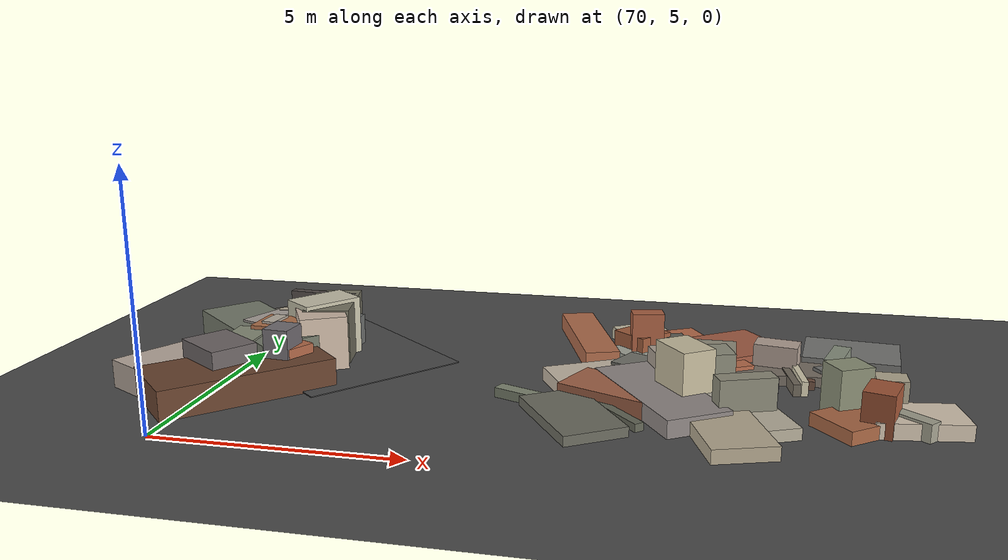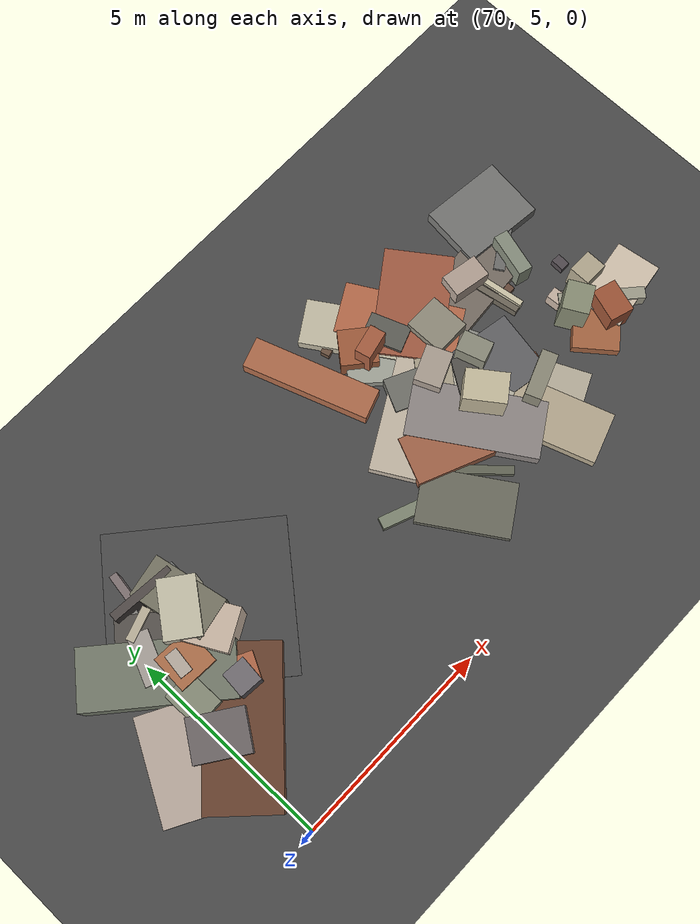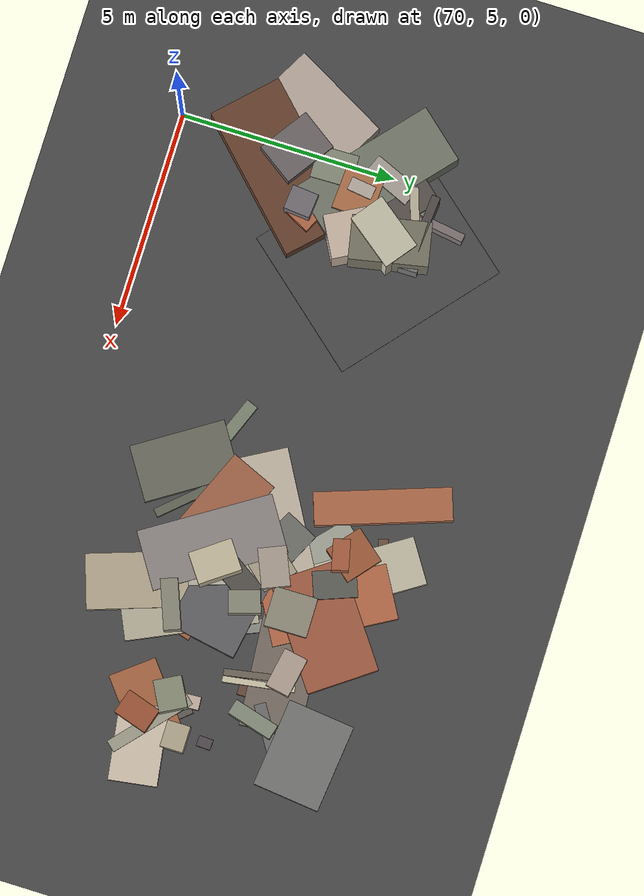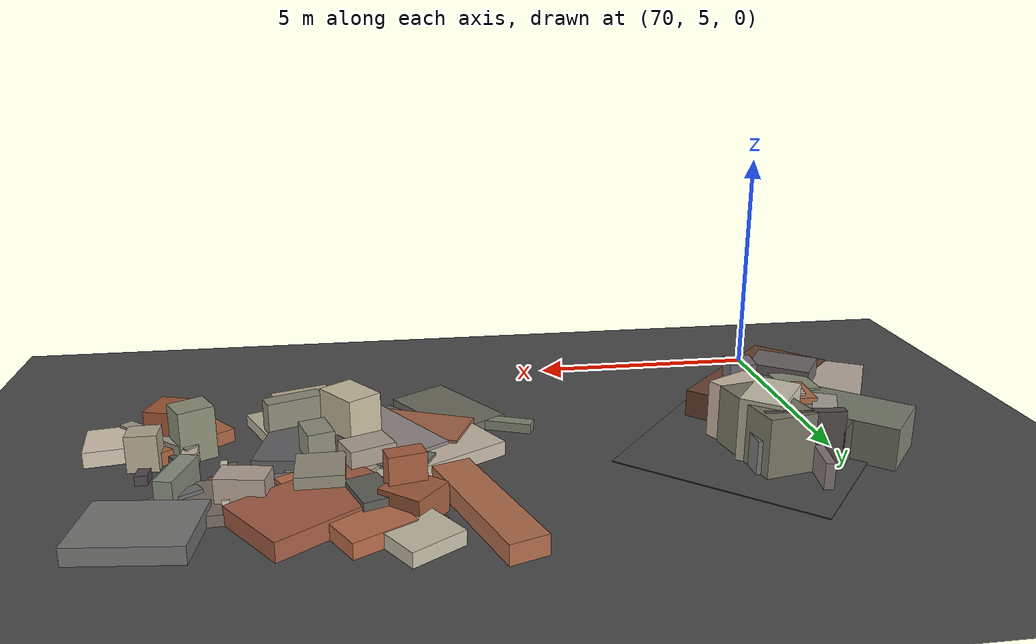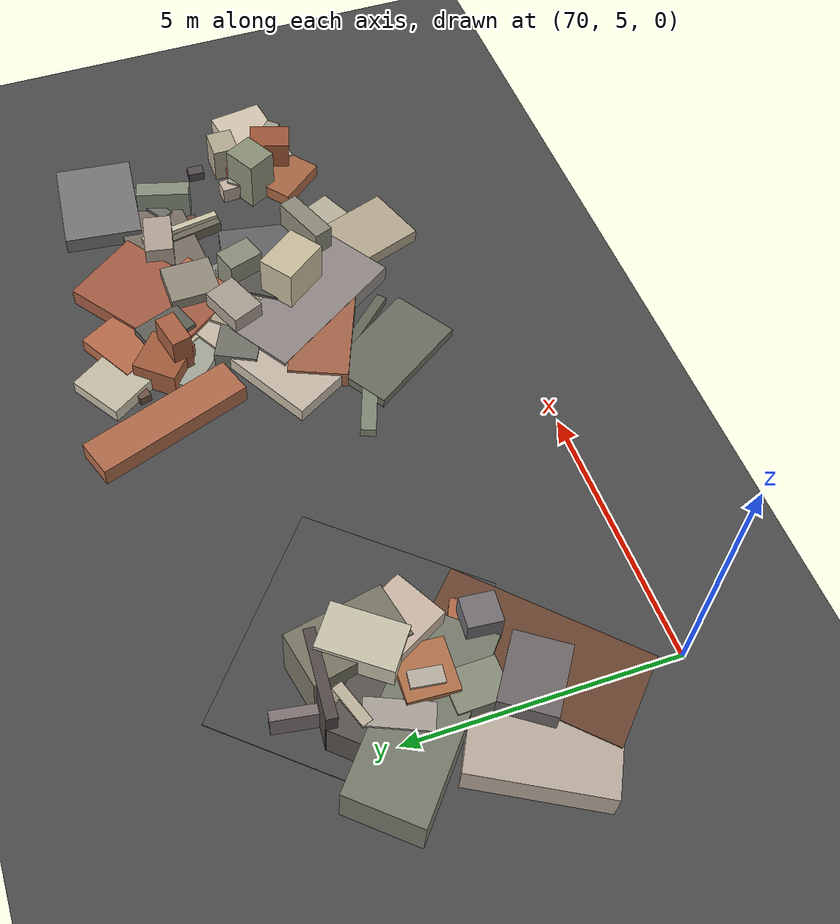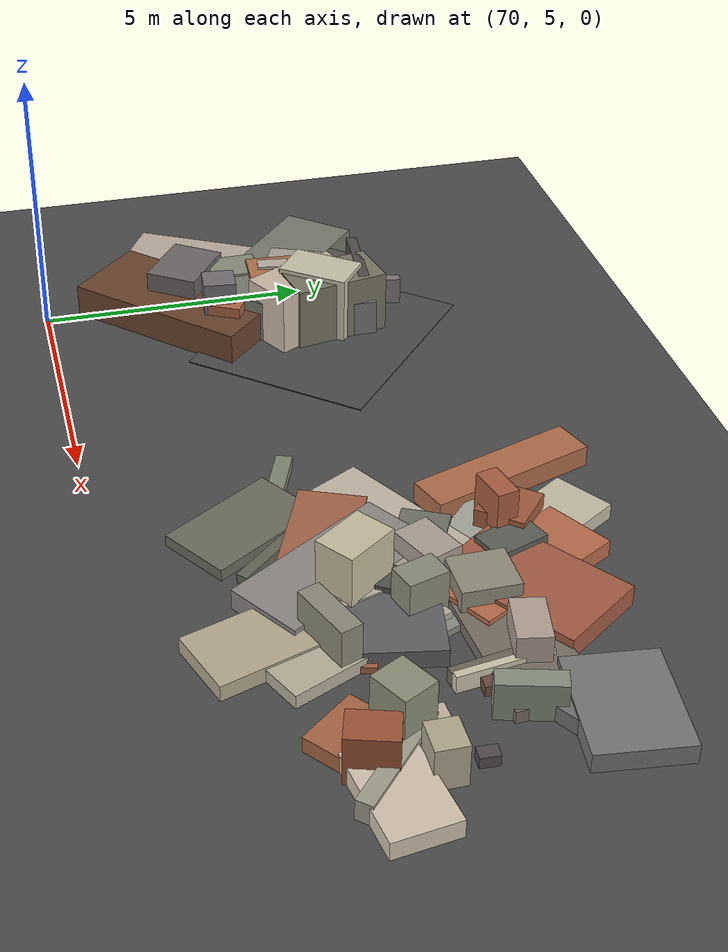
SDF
<sdf version="1.6">
 <world name="navitas_arena">
  <model name="ground_plane">
   <static>true</static>
   <link name="link">
    <collision name="collision">
     <geometry><plane><normal>0 0 1</normal><size>400 400</size></plane></geometry>
     <surface><friction><ode><mu>0.800</mu><mu2>0.800</mu2></ode></friction></surface>
    </collision>
    <visual name="visual">
     <cast_shadows>false</cast_shadows>
     <geometry><plane><normal>0 0 1</normal><size>400 400</size></plane></geometry>
     <material>
      <specular>0.04 0.04 0.04 1</specular>
      <script>
       <uri>file://media/materials/scripts/navitas_asphalt.material</uri>
       <name>Navitas/RealArenaAsphalt</name>
      </script>
     </material>
    </visual>
   </link>
  </model>
  <model name="road_zor_1_16">
   <static>true</static>
   <pose>71.765 10.157 0.040 0 0 0.865</pose>
   <link name="link">
    <collision name="col"><geometry><box><size>3.595 4.200 0.020</size></box></geometry></collision>
    <visual name="vis">
     <geometry><box><size>3.595 4.200 0.020</size></box></geometry>
     <material>
      <specular>0.04 0.04 0.04 1</specular>
      <script>
       <uri>file://media/materials/scripts/navitas_asphalt.material</uri>
       <name>Navitas/RealArenaAsphalt</name>
      </script>
     </material>
    </visual>
   </link>
  </model>
  <model name="blk_zor_1_3_0">
   <static>true</static>
   <pose>70.694 7.892 0.000 0 0 0</pose>
   <link name="link">
    <collision name="col_0">
     <pose>-1.077 -0.205 0.300 0.000 0.000 -0.502</pose>
     <geometry><box><size>2.533 2.417 0.600</size></box></geometry>
    </collision>
    <visual name="vis_0">
     <pose>-1.077 -0.205 0.300 0.000 0.000 -0.502</pose>
     <geometry><box><size>2.533 2.417 0.600</size></box></geometry>
     <material>
      <ambient>0.68 0.63 0.58 1</ambient>
      <diffuse>0.74 0.68 0.63 1</diffuse>
      <specular>0.05 0.05 0.045 1</specular>
     </material>
    </visual>
    <collision name="col_1">
     <pose>-0.594 -0.157 0.500 0.000 0.000 -0.605</pose>
     <geometry><box><size>1.282 1.000 0.999</size></box></geometry>
    </collision>
    <visual name="vis_1">
     <pose>-0.594 -0.157 0.500 0.000 0.000 -0.605</pose>
     <geometry><box><size>1.282 1.000 0.999</size></box></geometry>
     <material>
      <ambient>0.41 0.38 0.38 1</ambient>
      <diffuse>0.44 0.41 0.41 1</diffuse>
      <specular>0.05 0.05 0.045 1</specular>
     </material>
    </visual>
    <collision name="col_2">
     <pose>-0.442 0.771 0.450 0.000 0.000 1.589</pose>
     <geometry><box><size>0.941 0.743 0.900</size></box></geometry>
    </collision>
    <visual name="vis_2">
     <pose>-0.442 0.771 0.450 0.000 0.000 1.589</pose>
     <geometry><box><size>0.941 0.743 0.900</size></box></geometry>
     <material>
      <ambient>0.50 0.52 0.44 1</ambient>
      <diffuse>0.54 0.56 0.48 1</diffuse>
      <specular>0.05 0.05 0.045 1</specular>
     </material>
    </visual>
    <collision name="col_3">
     <pose>0.570 0.530 0.415 0.000 0.000 -0.470</pose>
     <geometry><box><size>0.951 0.635 0.829</size></box></geometry>
    </collision>
    <visual name="vis_3">
     <pose>0.570 0.530 0.415 0.000 0.000 -0.470</pose>
     <geometry><box><size>0.951 0.635 0.829</size></box></geometry>
     <material>
      <ambient>0.66 0.39 0.27 1</ambient>
      <diffuse>0.71 0.42 0.29 1</diffuse>
      <specular>0.05 0.05 0.045 1</specular>
     </material>
    </visual>
    <collision name="col_4">
     <pose>0.593 0.305 0.624 0.000 0.000 1.481</pose>
     <geometry><box><size>0.611 0.560 1.249</size></box></geometry>
    </collision>
    <visual name="vis_4">
     <pose>0.593 0.305 0.624 0.000 0.000 1.481</pose>
     <geometry><box><size>0.611 0.560 1.249</size></box></geometry>
     <material>
      <ambient>0.42 0.41 0.43 1</ambient>
      <diffuse>0.46 0.44 0.46 1</diffuse>
      <specular>0.05 0.05 0.045 1</specular>
     </material>
    </visual>
    <collision name="col_5">
     <pose>-0.144 -0.361 0.312 0.000 0.000 0.788</pose>
     <geometry><box><size>3.622 1.722 0.623</size></box></geometry>
    </collision>
    <visual name="vis_5">
     <pose>-0.144 -0.361 0.312 0.000 0.000 0.788</pose>
     <geometry><box><size>3.622 1.722 0.623</size></box></geometry>
     <material>
      <ambient>0.39 0.25 0.18 1</ambient>
      <diffuse>0.42 0.27 0.19 1</diffuse>
      <specular>0.05 0.05 0.045 1</specular>
     </material>
    </visual>
   </link>
  </model>
  <model name="blk_zor_1_3_1">
   <static>true</static>
   <pose>70.567 9.723 0.000 0 0 0</pose>
   <link name="link">
    <collision name="col_0">
     <pose>0.365 0.390 0.427 0.000 0.000 2.421</pose>
     <geometry><box><size>2.297 0.730 0.854</size></box></geometry>
    </collision>
    <visual name="vis_0">
     <pose>0.365 0.390 0.427 0.000 0.000 2.421</pose>
     <geometry><box><size>2.297 0.730 0.854</size></box></geometry>
     <material>
      <ambient>0.32 0.30 0.29 1</ambient>
      <diffuse>0.35 0.33 0.31 1</diffuse>
      <specular>0.05 0.05 0.045 1</specular>
     </material>
    </visual>
    <collision name="col_1">
     <pose>0.976 0.631 0.622 0.000 0.000 1.768</pose>
     <geometry><box><size>1.799 1.009 1.243</size></box></geometry>
    </collision>
    <visual name="vis_1">
     <pose>0.976 0.631 0.622 0.000 0.000 1.768</pose>
     <geometry><box><size>1.799 1.009 1.243</size></box></geometry>
     <material>
      <ambient>0.44 0.43 0.37 1</ambient>
      <diffuse>0.48 0.47 0.40 1</diffuse>
      <specular>0.05 0.05 0.045 1</specular>
     </material>
    </visual>
    <collision name="col_2">
     <pose>-0.462 -0.105 0.429 0.000 0.000 2.425</pose>
     <geometry><box><size>3.416 1.392 0.858</size></box></geometry>
    </collision>
    <visual name="vis_2">
     <pose>-0.462 -0.105 0.429 0.000 0.000 2.425</pose>
     <geometry><box><size>3.416 1.392 0.858</size></box></geometry>
     <material>
      <ambient>0.43 0.46 0.40 1</ambient>
      <diffuse>0.47 0.49 0.43 1</diffuse>
      <specular>0.05 0.05 0.045 1</specular>
     </material>
    </visual>
    <collision name="col_3">
     <pose>-0.391 0.261 0.454 0.000 0.000 1.165</pose>
     <geometry><box><size>1.159 0.484 0.908</size></box></geometry>
    </collision>
    <visual name="vis_3">
     <pose>-0.391 0.261 0.454 0.000 0.000 1.165</pose>
     <geometry><box><size>1.159 0.484 0.908</size></box></geometry>
     <material>
      <ambient>0.62 0.59 0.57 1</ambient>
      <diffuse>0.67 0.64 0.61 1</diffuse>
      <specular>0.05 0.05 0.045 1</specular>
     </material>
    </visual>
    <collision name="col_4">
     <pose>0.184 1.158 0.289 0.000 0.000 1.416</pose>
     <geometry><box><size>2.027 0.188 0.578</size></box></geometry>
    </collision>
    <visual name="vis_4">
     <pose>0.184 1.158 0.289 0.000 0.000 1.416</pose>
     <geometry><box><size>2.027 0.188 0.578</size></box></geometry>
     <material>
      <ambient>0.47 0.43 0.42 1</ambient>
      <diffuse>0.51 0.46 0.46 1</diffuse>
      <specular>0.05 0.05 0.045 1</specular>
     </material>
    </visual>
    <collision name="col_5">
     <pose>-0.015 0.899 0.461 0.000 0.000 0.327</pose>
     <geometry><box><size>0.794 0.198 0.922</size></box></geometry>
    </collision>
    <visual name="vis_5">
     <pose>-0.015 0.899 0.461 0.000 0.000 0.327</pose>
     <geometry><box><size>0.794 0.198 0.922</size></box></geometry>
     <material>
      <ambient>0.69 0.66 0.58 1</ambient>
      <diffuse>0.75 0.71 0.62 1</diffuse>
      <specular>0.05 0.05 0.045 1</specular>
     </material>
    </visual>
    <collision name="col_6">
     <pose>-0.035 1.088 0.381 0.000 0.000 -0.315</pose>
     <geometry><box><size>0.345 0.479 0.762</size></box></geometry>
    </collision>
    <visual name="vis_6">
     <pose>-0.035 1.088 0.381 0.000 0.000 -0.315</pose>
     <geometry><box><size>0.345 0.479 0.762</size></box></geometry>
     <material>
      <ambient>0.48 0.48 0.45 1</ambient>
      <diffuse>0.52 0.51 0.49 1</diffuse>
      <specular>0.05 0.05 0.045 1</specular>
     </material>
    </visual>
    <collision name="col_7">
     <pose>0.283 0.133 0.330 0.000 0.000 2.068</pose>
     <geometry><box><size>0.514 0.424 0.659</size></box></geometry>
    </collision>
    <visual name="vis_7">
     <pose>0.283 0.133 0.330 0.000 0.000 2.068</pose>
     <geometry><box><size>0.514 0.424 0.659</size></box></geometry>
     <material>
      <ambient>0.43 0.45 0.43 1</ambient>
      <diffuse>0.46 0.48 0.46 1</diffuse>
      <specular>0.05 0.05 0.045 1</specular>
     </material>
    </visual>
    <collision name="col_8">
     <pose>0.145 -0.373 0.492 0.000 0.000 1.515</pose>
     <geometry><box><size>0.903 0.949 0.985</size></box></geometry>
    </collision>
    <visual name="vis_8">
     <pose>0.145 -0.373 0.492 0.000 0.000 1.515</pose>
     <geometry><box><size>0.903 0.949 0.985</size></box></geometry>
     <material>
      <ambient>0.65 0.42 0.28 1</ambient>
      <diffuse>0.70 0.45 0.30 1</diffuse>
      <specular>0.05 0.05 0.045 1</specular>
     </material>
    </visual>
   </link>
  </model>
  <model name="blk_zor_1_3_3">
   <static>true</static>
   <pose>70.693 9.808 0.000 0 0 0</pose>
   <link name="link">
    <collision name="col_0">
     <pose>0.714 0.355 0.665 0.000 0.000 0.919</pose>
     <geometry><box><size>1.348 0.850 1.329</size></box></geometry>
    </collision>
    <visual name="vis_0">
     <pose>0.714 0.355 0.665 0.000 0.000 0.919</pose>
     <geometry><box><size>1.348 0.850 1.329</size></box></geometry>
     <material>
      <ambient>0.73 0.71 0.63 1</ambient>
      <diffuse>0.79 0.77 0.68 1</diffuse>
      <specular>0.05 0.05 0.045 1</specular>
     </material>
    </visual>
    <collision name="col_1">
     <pose>0.907 -0.303 0.610 0.000 0.000 2.066</pose>
     <geometry><box><size>1.166 1.010 1.221</size></box></geometry>
    </collision>
    <visual name="vis_1">
     <pose>0.907 -0.303 0.610 0.000 0.000 2.066</pose>
     <geometry><box><size>1.166 1.010 1.221</size></box></geometry>
     <material>
      <ambient>0.75 0.68 0.61 1</ambient>
      <diffuse>0.81 0.73 0.66 1</diffuse>
      <specular>0.05 0.05 0.045 1</specular>
     </material>
    </visual>
    <collision name="col_2">
     <pose>1.134 0.455 0.365 0.000 0.000 1.569</pose>
     <geometry><box><size>1.721 0.328 0.730</size></box></geometry>
    </collision>
    <visual name="vis_2">
     <pose>1.134 0.455 0.365 0.000 0.000 1.569</pose>
     <geometry><box><size>1.721 0.328 0.730</size></box></geometry>
     <material>
      <ambient>0.42 0.43 0.43 1</ambient>
      <diffuse>0.46 0.47 0.46 1</diffuse>
      <specular>0.05 0.05 0.045 1</specular>
     </material>
    </visual>
    <collision name="col_3">
     <pose>-0.123 -0.416 0.518 0.000 0.000 -0.134</pose>
     <geometry><box><size>0.303 0.581 1.037</size></box></geometry>
    </collision>
    <visual name="vis_3">
     <pose>-0.123 -0.416 0.518 0.000 0.000 -0.134</pose>
     <geometry><box><size>0.303 0.581 1.037</size></box></geometry>
     <material>
      <ambient>0.67 0.64 0.59 1</ambient>
      <diffuse>0.73 0.69 0.64 1</diffuse>
      <specular>0.05 0.05 0.045 1</specular>
     </material>
    </visual>
    <collision name="col_4">
     <pose>0.374 1.166 0.622 0.000 0.000 -0.086</pose>
     <geometry><box><size>1.565 0.199 1.243</size></box></geometry>
    </collision>
    <visual name="vis_4">
     <pose>0.374 1.166 0.622 0.000 0.000 -0.086</pose>
     <geometry><box><size>1.565 0.199 1.243</size></box></geometry>
     <material>
      <ambient>0.31 0.28 0.26 1</ambient>
      <diffuse>0.33 0.30 0.29 1</diffuse>
      <specular>0.05 0.05 0.045 1</specular>
     </material>
    </visual>
    <collision name="col_5">
     <pose>-0.389 -1.047 0.414 0.000 0.000 0.106</pose>
     <geometry><box><size>0.510 0.684 0.828</size></box></geometry>
    </collision>
    <visual name="vis_5">
     <pose>-0.389 -1.047 0.414 0.000 0.000 0.106</pose>
     <geometry><box><size>0.510 0.684 0.828</size></box></geometry>
     <material>
      <ambient>0.61 0.62 0.58 1</ambient>
      <diffuse>0.66 0.67 0.62 1</diffuse>
      <specular>0.05 0.05 0.045 1</specular>
     </material>
    </visual>
   </link>
  </model>
  <model name="deb_zor_10">
   <static>true</static>
   <pose>83.324 8.765 0.000 0 0 0</pose>
   <link name="link">
    <collision name="col_0">
     <pose>-0.013 -0.344 0.187 0.000 0.000 2.417</pose>
     <geometry><box><size>2.042 0.286 0.373</size></box></geometry>
    </collision>
    <visual name="vis_0">
     <pose>-0.013 -0.344 0.187 0.000 0.000 2.417</pose>
     <geometry><box><size>2.042 0.286 0.373</size></box></geometry>
     <material>
      <ambient>0.60 0.59 0.52 1</ambient>
      <diffuse>0.64 0.63 0.56 1</diffuse>
      <specular>0.05 0.05 0.045 1</specular>
     </material>
    </visual>
    <collision name="col_1">
     <pose>-0.029 -0.185 0.080 0.000 0.000 2.281</pose>
     <geometry><box><size>1.676 0.173 0.161</size></box></geometry>
    </collision>
    <visual name="vis_1">
     <pose>-0.029 -0.185 0.080 0.000 0.000 2.281</pose>
     <geometry><box><size>1.676 0.173 0.161</size></box></geometry>
     <material>
      <ambient>0.35 0.33 0.32 1</ambient>
      <diffuse>0.38 0.36 0.34 1</diffuse>
      <specular>0.05 0.05 0.045 1</specular>
     </material>
    </visual>
    <collision name="col_2">
     <pose>0.508 -0.447 0.161 0.000 0.000 3.291</pose>
     <geometry><box><size>1.764 1.105 0.321</size></box></geometry>
    </collision>
    <visual name="vis_2">
     <pose>0.508 -0.447 0.161 0.000 0.000 3.291</pose>
     <geometry><box><size>1.764 1.105 0.321</size></box></geometry>
     <material>
      <ambient>0.77 0.73 0.65 1</ambient>
      <diffuse>0.84 0.78 0.70 1</diffuse>
      <specular>0.05 0.05 0.045 1</specular>
     </material>
    </visual>
    <collision name="col_3">
     <pose>-0.728 0.360 0.168 0.000 0.000 1.639</pose>
     <geometry><box><size>0.456 0.300 0.336</size></box></geometry>
    </collision>
    <visual name="vis_3">
     <pose>-0.728 0.360 0.168 0.000 0.000 1.639</pose>
     <geometry><box><size>0.456 0.300 0.336</size></box></geometry>
     <material>
      <ambient>0.73 0.66 0.60 1</ambient>
      <diffuse>0.79 0.71 0.65 1</diffuse>
      <specular>0.05 0.05 0.045 1</specular>
     </material>
    </visual>
    <collision name="col_4">
     <pose>0.045 0.944 0.097 0.000 0.000 3.099</pose>
     <geometry><box><size>0.240 0.325 0.194</size></box></geometry>
    </collision>
    <visual name="vis_4">
     <pose>0.045 0.944 0.097 0.000 0.000 3.099</pose>
     <geometry><box><size>0.240 0.325 0.194</size></box></geometry>
     <material>
      <ambient>0.30 0.28 0.30 1</ambient>
      <diffuse>0.33 0.30 0.32 1</diffuse>
      <specular>0.05 0.05 0.045 1</specular>
     </material>
    </visual>
   </link>
  </model>
  <model name="deb_zor_58">
   <static>true</static>
   <pose>79.946 9.045 0.000 0 0 0</pose>
   <link name="link">
    <collision name="col_0">
     <pose>0.684 -0.558 0.120 0.000 0.000 2.004</pose>
     <geometry><box><size>3.015 1.044 0.241</size></box></geometry>
    </collision>
    <visual name="vis_0">
     <pose>0.684 -0.558 0.120 0.000 0.000 2.004</pose>
     <geometry><box><size>3.015 1.044 0.241</size></box></geometry>
     <material>
      <ambient>0.68 0.65 0.58 1</ambient>
      <diffuse>0.73 0.70 0.62 1</diffuse>
      <specular>0.05 0.05 0.045 1</specular>
     </material>
    </visual>
    <collision name="col_1">
     <pose>-1.082 0.530 0.180 0.000 0.000 0.854</pose>
     <geometry><box><size>1.835 0.848 0.361</size></box></geometry>
    </collision>
    <visual name="vis_1">
     <pose>-1.082 0.530 0.180 0.000 0.000 0.854</pose>
     <geometry><box><size>1.835 0.848 0.361</size></box></geometry>
     <material>
      <ambient>0.63 0.59 0.51 1</ambient>
      <diffuse>0.68 0.64 0.55 1</diffuse>
      <specular>0.05 0.05 0.045 1</specular>
     </material>
    </visual>
    <collision name="col_2">
     <pose>0.525 1.170 0.062 0.000 0.000 1.973</pose>
     <geometry><box><size>1.695 0.297 0.125</size></box></geometry>
    </collision>
    <visual name="vis_2">
     <pose>0.525 1.170 0.062 0.000 0.000 1.973</pose>
     <geometry><box><size>1.695 0.297 0.125</size></box></geometry>
     <material>
      <ambient>0.52 0.52 0.49 1</ambient>
      <diffuse>0.56 0.56 0.53 1</diffuse>
      <specular>0.05 0.05 0.045 1</specular>
     </material>
    </visual>
    <collision name="col_3">
     <pose>-0.104 -0.492 0.123 0.000 0.000 1.805</pose>
     <geometry><box><size>1.547 0.266 0.245</size></box></geometry>
    </collision>
    <visual name="vis_3">
     <pose>-0.104 -0.492 0.123 0.000 0.000 1.805</pose>
     <geometry><box><size>1.547 0.266 0.245</size></box></geometry>
     <material>
      <ambient>0.38 0.26 0.20 1</ambient>
      <diffuse>0.41 0.28 0.21 1</diffuse>
      <specular>0.05 0.05 0.045 1</specular>
     </material>
    </visual>
    <collision name="col_4">
     <pose>-0.966 -0.038 0.146 0.000 0.000 0.114</pose>
     <geometry><box><size>1.668 0.225 0.291</size></box></geometry>
    </collision>
    <visual name="vis_4">
     <pose>-0.966 -0.038 0.146 0.000 0.000 0.114</pose>
     <geometry><box><size>1.668 0.225 0.291</size></box></geometry>
     <material>
      <ambient>0.50 0.49 0.44 1</ambient>
      <diffuse>0.54 0.53 0.47 1</diffuse>
      <specular>0.05 0.05 0.045 1</specular>
     </material>
    </visual>
    <collision name="col_5">
     <pose>-0.312 -0.660 0.132 0.000 0.000 0.584</pose>
     <geometry><box><size>1.863 0.979 0.264</size></box></geometry>
    </collision>
    <visual name="vis_5">
     <pose>-0.312 -0.660 0.132 0.000 0.000 0.584</pose>
     <geometry><box><size>1.863 0.979 0.264</size></box></geometry>
     <material>
      <ambient>0.43 0.46 0.40 1</ambient>
      <diffuse>0.47 0.50 0.43 1</diffuse>
      <specular>0.05 0.05 0.045 1</specular>
     </material>
    </visual>
    <collision name="col_6">
     <pose>0.212 0.595 0.446 0.000 0.000 1.880</pose>
     <geometry><box><size>0.723 0.516 0.892</size></box></geometry>
    </collision>
    <visual name="vis_6">
     <pose>0.212 0.595 0.446 0.000 0.000 1.880</pose>
     <geometry><box><size>0.723 0.516 0.892</size></box></geometry>
     <material>
      <ambient>0.52 0.52 0.45 1</ambient>
      <diffuse>0.56 0.56 0.49 1</diffuse>
      <specular>0.05 0.05 0.045 1</specular>
     </material>
    </visual>
   </link>
  </model>
  <model name="deb_zor_107">
   <static>true</static>
   <pose>82.976 8.775 0.000 0 0 0</pose>
   <link name="link">
    <collision name="col_0">
     <pose>-0.377 -0.085 0.536 0.000 0.000 -1.075</pose>
     <geometry><box><size>0.641 0.720 1.072</size></box></geometry>
    </collision>
    <visual name="vis_0">
     <pose>-0.377 -0.085 0.536 0.000 0.000 -1.075</pose>
     <geometry><box><size>0.641 0.720 1.072</size></box></geometry>
     <material>
      <ambient>0.51 0.52 0.44 1</ambient>
      <diffuse>0.55 0.57 0.47 1</diffuse>
      <specular>0.05 0.05 0.045 1</specular>
     </material>
    </visual>
    <collision name="col_1">
     <pose>-0.012 -0.531 0.138 0.000 0.000 0.674</pose>
     <geometry><box><size>1.850 1.105 0.277</size></box></geometry>
    </collision>
    <visual name="vis_1">
     <pose>-0.012 -0.531 0.138 0.000 0.000 0.674</pose>
     <geometry><box><size>1.850 1.105 0.277</size></box></geometry>
     <material>
      <ambient>0.62 0.38 0.25 1</ambient>
      <diffuse>0.67 0.41 0.27 1</diffuse>
      <specular>0.05 0.05 0.045 1</specular>
     </material>
    </visual>
    <collision name="col_2">
     <pose>0.194 -0.679 0.430 0.000 0.000 1.268</pose>
     <geometry><box><size>0.809 0.592 0.860</size></box></geometry>
    </collision>
    <visual name="vis_2">
     <pose>0.194 -0.679 0.430 0.000 0.000 1.268</pose>
     <geometry><box><size>0.809 0.592 0.860</size></box></geometry>
     <material>
      <ambient>0.58 0.31 0.20 1</ambient>
      <diffuse>0.63 0.34 0.22 1</diffuse>
      <specular>0.05 0.05 0.045 1</specular>
     </material>
    </visual>
    <collision name="col_3">
     <pose>0.470 0.287 0.373 0.000 0.000 0.000</pose>
     <geometry><box><size>0.605 0.525 0.747</size></box></geometry>
    </collision>
    <visual name="vis_3">
     <pose>0.470 0.287 0.373 0.000 0.000 0.000</pose>
     <geometry><box><size>0.605 0.525 0.747</size></box></geometry>
     <material>
      <ambient>0.66 0.62 0.52 1</ambient>
      <diffuse>0.71 0.67 0.57 1</diffuse>
      <specular>0.05 0.05 0.045 1</specular>
     </material>
    </visual>
   </link>
  </model>
  <model name="deb_zor_109">
   <static>true</static>
   <pose>79.143 8.849 0.000 0 0 0</pose>
   <link name="link">
    <collision name="col_0">
     <pose>-0.073 -0.300 0.183 0.000 0.000 2.141</pose>
     <geometry><box><size>3.126 1.383 0.367</size></box></geometry>
    </collision>
    <visual name="vis_0">
     <pose>-0.073 -0.300 0.183 0.000 0.000 2.141</pose>
     <geometry><box><size>3.126 1.383 0.367</size></box></geometry>
     <material>
      <ambient>0.53 0.50 0.50 1</ambient>
      <diffuse>0.57 0.54 0.53 1</diffuse>
      <specular>0.05 0.05 0.045 1</specular>
     </material>
    </visual>
    <collision name="col_1">
     <pose>0.553 0.532 0.211 0.000 0.000 0.994</pose>
     <geometry><box><size>0.901 0.579 0.421</size></box></geometry>
    </collision>
    <visual name="vis_1">
     <pose>0.553 0.532 0.211 0.000 0.000 0.994</pose>
     <geometry><box><size>0.901 0.579 0.421</size></box></geometry>
     <material>
      <ambient>0.31 0.31 0.29 1</ambient>
      <diffuse>0.34 0.33 0.31 1</diffuse>
      <specular>0.05 0.05 0.045 1</specular>
     </material>
    </visual>
    <collision name="col_2">
     <pose>-0.654 -0.400 0.180 0.000 0.000 2.738</pose>
     <geometry><box><size>2.662 1.156 0.360</size></box></geometry>
    </collision>
    <visual name="vis_2">
     <pose>-0.654 -0.400 0.180 0.000 0.000 2.738</pose>
     <geometry><box><size>2.662 1.156 0.360</size></box></geometry>
     <material>
      <ambient>0.60 0.37 0.27 1</ambient>
      <diffuse>0.65 0.40 0.29 1</diffuse>
      <specular>0.05 0.05 0.045 1</specular>
     </material>
    </visual>
    <collision name="col_3">
     <pose>0.386 0.558 0.105 0.000 0.000 2.350</pose>
     <geometry><box><size>1.764 0.714 0.209</size></box></geometry>
    </collision>
    <visual name="vis_3">
     <pose>0.386 0.558 0.105 0.000 0.000 2.350</pose>
     <geometry><box><size>1.764 0.714 0.209</size></box></geometry>
     <material>
      <ambient>0.70 0.69 0.59 1</ambient>
      <diffuse>0.75 0.75 0.64 1</diffuse>
      <specular>0.05 0.05 0.045 1</specular>
     </material>
    </visual>
    <collision name="col_4">
     <pose>0.042 0.360 0.176 0.000 0.000 1.883</pose>
     <geometry><box><size>2.280 1.282 0.352</size></box></geometry>
    </collision>
    <visual name="vis_4">
     <pose>0.042 0.360 0.176 0.000 0.000 1.883</pose>
     <geometry><box><size>2.280 1.282 0.352</size></box></geometry>
     <material>
      <ambient>0.68 0.66 0.61 1</ambient>
      <diffuse>0.73 0.71 0.65 1</diffuse>
      <specular>0.05 0.05 0.045 1</specular>
     </material>
    </visual>
    <collision name="col_5">
     <pose>0.339 0.408 0.166 0.000 0.000 2.601</pose>
     <geometry><box><size>0.383 0.397 0.331</size></box></geometry>
    </collision>
    <visual name="vis_5">
     <pose>0.339 0.408 0.166 0.000 0.000 2.601</pose>
     <geometry><box><size>0.383 0.397 0.331</size></box></geometry>
     <material>
      <ambient>0.50 0.48 0.49 1</ambient>
      <diffuse>0.54 0.52 0.53 1</diffuse>
      <specular>0.05 0.05 0.045 1</specular>
     </material>
    </visual>
    <collision name="col_6">
     <pose>0.515 0.314 0.086 0.000 0.000 2.017</pose>
     <geometry><box><size>2.936 1.485 0.173</size></box></geometry>
    </collision>
    <visual name="vis_6">
     <pose>0.515 0.314 0.086 0.000 0.000 2.017</pose>
     <geometry><box><size>2.936 1.485 0.173</size></box></geometry>
     <material>
      <ambient>0.65 0.39 0.32 1</ambient>
      <diffuse>0.70 0.42 0.35 1</diffuse>
      <specular>0.05 0.05 0.045 1</specular>
     </material>
    </visual>
   </link>
  </model>
  <model name="deb_zor_131">
   <static>true</static>
   <pose>77.423 7.945 0.000 0 0 0</pose>
   <link name="link">
    <collision name="col_0">
     <pose>-0.792 0.205 0.102 0.000 0.000 2.766</pose>
     <geometry><box><size>1.737 0.290 0.204</size></box></geometry>
    </collision>
    <visual name="vis_0">
     <pose>-0.792 0.205 0.102 0.000 0.000 2.766</pose>
     <geometry><box><size>1.737 0.290 0.204</size></box></geometry>
     <material>
      <ambient>0.48 0.50 0.42 1</ambient>
      <diffuse>0.51 0.54 0.46 1</diffuse>
      <specular>0.05 0.05 0.045 1</specular>
     </material>
    </visual>
    <collision name="col_1">
     <pose>0.764 -0.134 0.084 0.000 0.000 2.309</pose>
     <geometry><box><size>1.849 0.201 0.167</size></box></geometry>
    </collision>
    <visual name="vis_1">
     <pose>0.764 -0.134 0.084 0.000 0.000 2.309</pose>
     <geometry><box><size>1.849 0.201 0.167</size></box></geometry>
     <material>
      <ambient>0.37 0.38 0.32 1</ambient>
      <diffuse>0.40 0.41 0.35 1</diffuse>
      <specular>0.05 0.05 0.045 1</specular>
     </material>
    </visual>
    <collision name="col_2">
     <pose>0.077 -0.544 0.102 0.000 0.000 2.145</pose>
     <geometry><box><size>2.201 1.308 0.205</size></box></geometry>
    </collision>
    <visual name="vis_2">
     <pose>0.077 -0.544 0.102 0.000 0.000 2.145</pose>
     <geometry><box><size>2.201 1.308 0.205</size></box></geometry>
     <material>
      <ambient>0.40 0.40 0.35 1</ambient>
      <diffuse>0.43 0.43 0.38 1</diffuse>
      <specular>0.05 0.05 0.045 1</specular>
     </material>
    </visual>
    <collision name="col_3">
     <pose>0.390 -0.548 0.080 0.000 0.000 1.116</pose>
     <geometry><box><size>0.186 0.317 0.161</size></box></geometry>
    </collision>
    <visual name="vis_3">
     <pose>0.390 -0.548 0.080 0.000 0.000 1.116</pose>
     <geometry><box><size>0.186 0.317 0.161</size></box></geometry>
     <material>
      <ambient>0.58 0.33 0.22 1</ambient>
      <diffuse>0.62 0.36 0.24 1</diffuse>
      <specular>0.05 0.05 0.045 1</specular>
     </material>
    </visual>
   </link>
  </model>
  <model name="deb_zor_157">
   <static>true</static>
   <pose>80.170 8.088 0.000 0 0 0</pose>
   <link name="link">
    <collision name="col_0">
     <pose>0.199 1.029 0.160 0.000 0.000 2.963</pose>
     <geometry><box><size>1.786 1.616 0.321</size></box></geometry>
    </collision>
    <visual name="vis_0">
     <pose>0.199 1.029 0.160 0.000 0.000 2.963</pose>
     <geometry><box><size>1.786 1.616 0.321</size></box></geometry>
     <material>
      <ambient>0.36 0.36 0.37 1</ambient>
      <diffuse>0.39 0.39 0.40 1</diffuse>
      <specular>0.05 0.05 0.045 1</specular>
     </material>
    </visual>
    <collision name="col_1">
     <pose>0.523 0.008 0.448 0.000 0.000 3.510</pose>
     <geometry><box><size>1.149 0.390 0.896</size></box></geometry>
    </collision>
    <visual name="vis_1">
     <pose>0.523 0.008 0.448 0.000 0.000 3.510</pose>
     <geometry><box><size>1.149 0.390 0.896</size></box></geometry>
     <material>
      <ambient>0.52 0.51 0.45 1</ambient>
      <diffuse>0.56 0.55 0.48 1</diffuse>
      <specular>0.05 0.05 0.045 1</specular>
     </material>
    </visual>
    <collision name="col_2">
     <pose>0.949 0.467 0.062 0.000 0.000 2.869</pose>
     <geometry><box><size>0.279 0.329 0.125</size></box></geometry>
    </collision>
    <visual name="vis_2">
     <pose>0.949 0.467 0.062 0.000 0.000 2.869</pose>
     <geometry><box><size>0.279 0.329 0.125</size></box></geometry>
     <material>
      <ambient>0.59 0.36 0.25 1</ambient>
      <diffuse>0.64 0.39 0.26 1</diffuse>
      <specular>0.05 0.05 0.045 1</specular>
     </material>
    </visual>
    <collision name="col_3">
     <pose>0.071 -0.517 0.140 0.000 0.000 1.899</pose>
     <geometry><box><size>3.088 1.253 0.281</size></box></geometry>
    </collision>
    <visual name="vis_3">
     <pose>0.071 -0.517 0.140 0.000 0.000 1.899</pose>
     <geometry><box><size>3.088 1.253 0.281</size></box></geometry>
     <material>
      <ambient>0.67 0.62 0.53 1</ambient>
      <diffuse>0.72 0.67 0.57 1</diffuse>
      <specular>0.05 0.05 0.045 1</specular>
     </material>
    </visual>
    <collision name="col_4">
     <pose>-0.645 0.679 0.617 0.000 0.000 2.200</pose>
     <geometry><box><size>1.007 0.733 1.234</size></box></geometry>
    </collision>
    <visual name="vis_4">
     <pose>-0.645 0.679 0.617 0.000 0.000 2.200</pose>
     <geometry><box><size>1.007 0.733 1.234</size></box></geometry>
     <material>
      <ambient>0.73 0.69 0.58 1</ambient>
      <diffuse>0.79 0.75 0.63 1</diffuse>
      <specular>0.05 0.05 0.045 1</specular>
     </material>
    </visual>
   </link>
  </model>
  <model name="deb_zor_270">
   <static>true</static>
   <pose>82.335 11.420 0.000 0 0 0</pose>
   <link name="link">
    <collision name="col_0">
     <pose>0.243 -0.831 0.332 0.000 0.000 1.300</pose>
     <geometry><box><size>1.082 0.353 0.665</size></box></geometry>
    </collision>
    <visual name="vis_0">
     <pose>0.243 -0.831 0.332 0.000 0.000 1.300</pose>
     <geometry><box><size>1.082 0.353 0.665</size></box></geometry>
     <material>
      <ambient>0.50 0.52 0.46 1</ambient>
      <diffuse>0.54 0.57 0.50 1</diffuse>
      <specular>0.05 0.05 0.045 1</specular>
     </material>
    </visual>
    <collision name="col_1">
     <pose>0.047 -0.124 0.069 0.000 0.000 1.685</pose>
     <geometry><box><size>0.462 0.267 0.137</size></box></geometry>
    </collision>
    <visual name="vis_1">
     <pose>0.047 -0.124 0.069 0.000 0.000 1.685</pose>
     <geometry><box><size>0.462 0.267 0.137</size></box></geometry>
     <material>
      <ambient>0.57 0.35 0.21 1</ambient>
      <diffuse>0.61 0.38 0.23 1</diffuse>
      <specular>0.05 0.05 0.045 1</specular>
     </material>
    </visual>
    <collision name="col_2">
     <pose>0.365 -0.474 0.144 0.000 0.000 0.565</pose>
     <geometry><box><size>1.215 0.269 0.288</size></box></geometry>
    </collision>
    <visual name="vis_2">
     <pose>0.365 -0.474 0.144 0.000 0.000 0.565</pose>
     <geometry><box><size>1.215 0.269 0.288</size></box></geometry>
     <material>
      <ambient>0.40 0.40 0.40 1</ambient>
      <diffuse>0.44 0.44 0.43 1</diffuse>
      <specular>0.05 0.05 0.045 1</specular>
     </material>
    </visual>
    <collision name="col_3">
     <pose>0.661 0.471 0.168 0.000 0.000 3.032</pose>
     <geometry><box><size>2.023 1.545 0.337</size></box></geometry>
    </collision>
    <visual name="vis_3">
     <pose>0.661 0.471 0.168 0.000 0.000 3.032</pose>
     <geometry><box><size>2.023 1.545 0.337</size></box></geometry>
     <material>
      <ambient>0.43 0.43 0.42 1</ambient>
      <diffuse>0.47 0.47 0.46 1</diffuse>
      <specular>0.05 0.05 0.045 1</specular>
     </material>
    </visual>
   </link>
  </model>
  <model name="deb_zor_279">
   <static>true</static>
   <pose>79.281 10.700 0.000 0 0 0</pose>
   <link name="link">
    <collision name="col_0">
     <pose>-0.061 -0.669 0.353 0.000 0.000 1.972</pose>
     <geometry><box><size>0.649 0.903 0.706</size></box></geometry>
    </collision>
    <visual name="vis_0">
     <pose>-0.061 -0.669 0.353 0.000 0.000 1.972</pose>
     <geometry><box><size>0.649 0.903 0.706</size></box></geometry>
     <material>
      <ambient>0.63 0.58 0.53 1</ambient>
      <diffuse>0.68 0.63 0.58 1</diffuse>
      <specular>0.05 0.05 0.045 1</specular>
     </material>
    </visual>
    <collision name="col_1">
     <pose>0.775 -0.020 0.303 0.000 0.000 3.152</pose>
     <geometry><box><size>0.906 0.988 0.606</size></box></geometry>
    </collision>
    <visual name="vis_1">
     <pose>0.775 -0.020 0.303 0.000 0.000 3.152</pose>
     <geometry><box><size>0.906 0.988 0.606</size></box></geometry>
     <material>
      <ambient>0.54 0.51 0.46 1</ambient>
      <diffuse>0.58 0.56 0.49 1</diffuse>
      <specular>0.05 0.05 0.045 1</specular>
     </material>
    </visual>
    <collision name="col_2">
     <pose>0.842 0.779 0.186 0.000 0.000 3.767</pose>
     <geometry><box><size>2.620 1.665 0.372</size></box></geometry>
    </collision>
    <visual name="vis_2">
     <pose>0.842 0.779 0.186 0.000 0.000 3.767</pose>
     <geometry><box><size>2.620 1.665 0.372</size></box></geometry>
     <material>
      <ambient>0.60 0.34 0.25 1</ambient>
      <diffuse>0.65 0.37 0.27 1</diffuse>
      <specular>0.05 0.05 0.045 1</specular>
     </material>
    </visual>
    <collision name="col_3">
     <pose>-0.115 0.731 0.234 0.000 0.000 3.503</pose>
     <geometry><box><size>0.638 0.990 0.468</size></box></geometry>
    </collision>
    <visual name="vis_3">
     <pose>-0.115 0.731 0.234 0.000 0.000 3.503</pose>
     <geometry><box><size>0.638 0.990 0.468</size></box></geometry>
     <material>
      <ambient>0.35 0.35 0.32 1</ambient>
      <diffuse>0.38 0.38 0.35 1</diffuse>
      <specular>0.05 0.05 0.045 1</specular>
     </material>
    </visual>
    <collision name="col_4">
     <pose>-0.730 0.675 0.550 0.000 0.000 3.373</pose>
     <geometry><box><size>0.702 0.387 1.099</size></box></geometry>
    </collision>
    <visual name="vis_4">
     <pose>-0.730 0.675 0.550 0.000 0.000 3.373</pose>
     <geometry><box><size>0.702 0.387 1.099</size></box></geometry>
     <material>
      <ambient>0.62 0.35 0.24 1</ambient>
      <diffuse>0.67 0.38 0.26 1</diffuse>
      <specular>0.05 0.05 0.045 1</specular>
     </material>
    </visual>
   </link>
  </model>
  <model name="deb_zor_292">
   <static>true</static>
   <pose>78.108 11.082 0.000 0 0 0</pose>
   <link name="link">
    <collision name="col_0">
     <pose>-0.928 0.860 0.195 0.000 0.000 1.906</pose>
     <geometry><box><size>3.102 0.751 0.390</size></box></geometry>
    </collision>
    <visual name="vis_0">
     <pose>-0.928 0.860 0.195 0.000 0.000 1.906</pose>
     <geometry><box><size>3.102 0.751 0.390</size></box></geometry>
     <material>
      <ambient>0.65 0.39 0.28 1</ambient>
      <diffuse>0.70 0.43 0.30 1</diffuse>
      <specular>0.05 0.05 0.045 1</specular>
     </material>
    </visual>
    <collision name="col_1">
     <pose>-0.010 1.149 0.091 0.000 0.000 0.269</pose>
     <geometry><box><size>0.490 0.228 0.182</size></box></geometry>
    </collision>
    <visual name="vis_1">
     <pose>-0.010 1.149 0.091 0.000 0.000 0.269</pose>
     <geometry><box><size>0.490 0.228 0.182</size></box></geometry>
     <material>
      <ambient>0.40 0.31 0.24 1</ambient>
      <diffuse>0.43 0.33 0.26 1</diffuse>
      <specular>0.05 0.05 0.045 1</specular>
     </material>
    </visual>
    <collision name="col_2">
     <pose>0.047 -1.275 0.150 0.000 0.000 0.517</pose>
     <geometry><box><size>3.101 1.098 0.299</size></box></geometry>
    </collision>
    <visual name="vis_2">
     <pose>0.047 -1.275 0.150 0.000 0.000 0.517</pose>
     <geometry><box><size>3.101 1.098 0.299</size></box></geometry>
     <material>
      <ambient>0.73 0.67 0.61 1</ambient>
      <diffuse>0.78 0.73 0.66 1</diffuse>
      <specular>0.05 0.05 0.045 1</specular>
     </material>
    </visual>
    <collision name="col_3">
     <pose>0.389 -0.931 0.180 0.000 0.000 1.117</pose>
     <geometry><box><size>0.824 0.874 0.361</size></box></geometry>
    </collision>
    <visual name="vis_3">
     <pose>0.389 -0.931 0.180 0.000 0.000 1.117</pose>
     <geometry><box><size>0.824 0.874 0.361</size></box></geometry>
     <material>
      <ambient>0.42 0.42 0.39 1</ambient>
      <diffuse>0.45 0.45 0.42 1</diffuse>
      <specular>0.05 0.05 0.045 1</specular>
     </material>
    </visual>
   </link>
  </model>
  <model name="deb_zor_338">
   <static>true</static>
   <pose>81.558 10.509 0.000 0 0 0</pose>
   <link name="link">
    <collision name="col_0">
     <pose>-0.304 0.367 0.109 0.000 0.000 3.224</pose>
     <geometry><box><size>2.908 1.370 0.218</size></box></geometry>
    </collision>
    <visual name="vis_0">
     <pose>-0.304 0.367 0.109 0.000 0.000 3.224</pose>
     <geometry><box><size>2.908 1.370 0.218</size></box></geometry>
     <material>
      <ambient>0.44 0.41 0.37 1</ambient>
      <diffuse>0.48 0.44 0.40 1</diffuse>
      <specular>0.05 0.05 0.045 1</specular>
     </material>
    </visual>
    <collision name="col_1">
     <pose>0.245 0.370 0.107 0.000 0.000 1.692</pose>
     <geometry><box><size>1.214 0.260 0.215</size></box></geometry>
    </collision>
    <visual name="vis_1">
     <pose>0.245 0.370 0.107 0.000 0.000 1.692</pose>
     <geometry><box><size>1.214 0.260 0.215</size></box></geometry>
     <material>
      <ambient>0.73 0.67 0.58 1</ambient>
      <diffuse>0.79 0.73 0.63 1</diffuse>
      <specular>0.05 0.05 0.045 1</specular>
     </material>
    </visual>
    <collision name="col_2">
     <pose>0.059 -0.169 0.126 0.000 0.000 1.751</pose>
     <geometry><box><size>1.426 0.155 0.251</size></box></geometry>
    </collision>
    <visual name="vis_2">
     <pose>0.059 -0.169 0.126 0.000 0.000 1.751</pose>
     <geometry><box><size>1.426 0.155 0.251</size></box></geometry>
     <material>
      <ambient>0.41 0.38 0.33 1</ambient>
      <diffuse>0.44 0.41 0.36 1</diffuse>
      <specular>0.05 0.05 0.045 1</specular>
     </material>
    </visual>
    <collision name="col_3">
     <pose>0.221 -0.042 0.157 0.000 0.000 1.721</pose>
     <geometry><box><size>1.630 0.137 0.314</size></box></geometry>
    </collision>
    <visual name="vis_3">
     <pose>0.221 -0.042 0.157 0.000 0.000 1.721</pose>
     <geometry><box><size>1.630 0.137 0.314</size></box></geometry>
     <material>
      <ambient>0.76 0.73 0.63 1</ambient>
      <diffuse>0.82 0.79 0.68 1</diffuse>
      <specular>0.05 0.05 0.045 1</specular>
     </material>
    </visual>
    <collision name="col_4">
     <pose>0.421 0.202 0.093 0.000 0.000 1.575</pose>
     <geometry><box><size>1.296 0.289 0.186</size></box></geometry>
    </collision>
    <visual name="vis_4">
     <pose>0.421 0.202 0.093 0.000 0.000 1.575</pose>
     <geometry><box><size>1.296 0.289 0.186</size></box></geometry>
     <material>
      <ambient>0.39 0.28 0.23 1</ambient>
      <diffuse>0.42 0.30 0.24 1</diffuse>
      <specular>0.05 0.05 0.045 1</specular>
     </material>
    </visual>
    <collision name="col_5">
     <pose>-0.189 0.483 0.345 0.000 0.000 2.957</pose>
     <geometry><box><size>0.917 0.560 0.690</size></box></geometry>
    </collision>
    <visual name="vis_5">
     <pose>-0.189 0.483 0.345 0.000 0.000 2.957</pose>
     <geometry><box><size>0.917 0.560 0.690</size></box></geometry>
     <material>
      <ambient>0.66 0.59 0.55 1</ambient>
      <diffuse>0.71 0.64 0.59 1</diffuse>
      <specular>0.05 0.05 0.045 1</specular>
     </material>
    </visual>
   </link>
  </model>
  <model name="deb_zor_398">
   <static>true</static>
   <pose>79.059 11.490 0.000 0 0 0</pose>
   <link name="link">
    <collision name="col_0">
     <pose>-0.627 0.150 0.284 0.000 0.000 -0.696</pose>
     <geometry><box><size>0.894 0.872 0.568</size></box></geometry>
    </collision>
    <visual name="vis_0">
     <pose>-0.627 0.150 0.284 0.000 0.000 -0.696</pose>
     <geometry><box><size>0.894 0.872 0.568</size></box></geometry>
     <material>
      <ambient>0.59 0.35 0.22 1</ambient>
      <diffuse>0.64 0.37 0.24 1</diffuse>
      <specular>0.05 0.05 0.045 1</specular>
     </material>
    </visual>
    <collision name="col_1">
     <pose>-0.290 0.530 0.144 0.000 0.000 -0.995</pose>
     <geometry><box><size>2.539 1.101 0.287</size></box></geometry>
    </collision>
    <visual name="vis_1">
     <pose>-0.290 0.530 0.144 0.000 0.000 -0.995</pose>
     <geometry><box><size>2.539 1.101 0.287</size></box></geometry>
     <material>
      <ambient>0.73 0.69 0.61 1</ambient>
      <diffuse>0.78 0.75 0.66 1</diffuse>
      <specular>0.05 0.05 0.045 1</specular>
     </material>
    </visual>
    <collision name="col_2">
     <pose>-0.000 -0.102 0.073 0.000 0.000 -0.069</pose>
     <geometry><box><size>0.462 0.459 0.147</size></box></geometry>
    </collision>
    <visual name="vis_2">
     <pose>-0.000 -0.102 0.073 0.000 0.000 -0.069</pose>
     <geometry><box><size>0.462 0.459 0.147</size></box></geometry>
     <material>
      <ambient>0.63 0.59 0.52 1</ambient>
      <diffuse>0.68 0.64 0.56 1</diffuse>
      <specular>0.05 0.05 0.045 1</specular>
     </material>
    </visual>
    <collision name="col_3">
     <pose>0.099 -0.488 0.123 0.000 0.000 -0.736</pose>
     <geometry><box><size>2.515 1.624 0.245</size></box></geometry>
    </collision>
    <visual name="vis_3">
     <pose>0.099 -0.488 0.123 0.000 0.000 -0.736</pose>
     <geometry><box><size>2.515 1.624 0.245</size></box></geometry>
     <material>
      <ambient>0.61 0.61 0.57 1</ambient>
      <diffuse>0.65 0.66 0.61 1</diffuse>
      <specular>0.05 0.05 0.045 1</specular>
     </material>
    </visual>
    <collision name="col_4">
     <pose>0.580 -0.044 0.153 0.000 0.000 -1.050</pose>
     <geometry><box><size>2.869 1.260 0.306</size></box></geometry>
    </collision>
    <visual name="vis_4">
     <pose>0.580 -0.044 0.153 0.000 0.000 -1.050</pose>
     <geometry><box><size>2.869 1.260 0.306</size></box></geometry>
     <material>
      <ambient>0.67 0.40 0.28 1</ambient>
      <diffuse>0.73 0.43 0.30 1</diffuse>
      <specular>0.05 0.05 0.045 1</specular>
     </material>
    </visual>
   </link>
  </model>
 </world>
</sdf>
